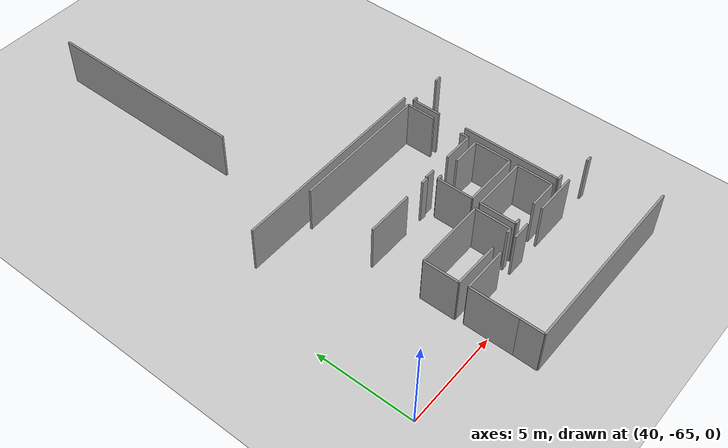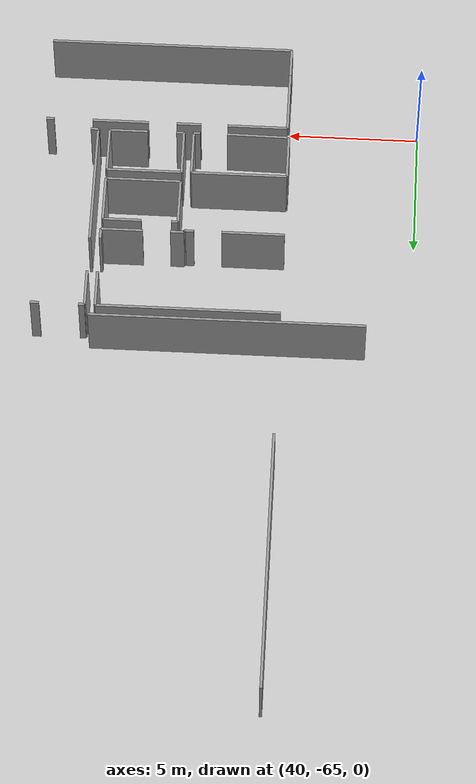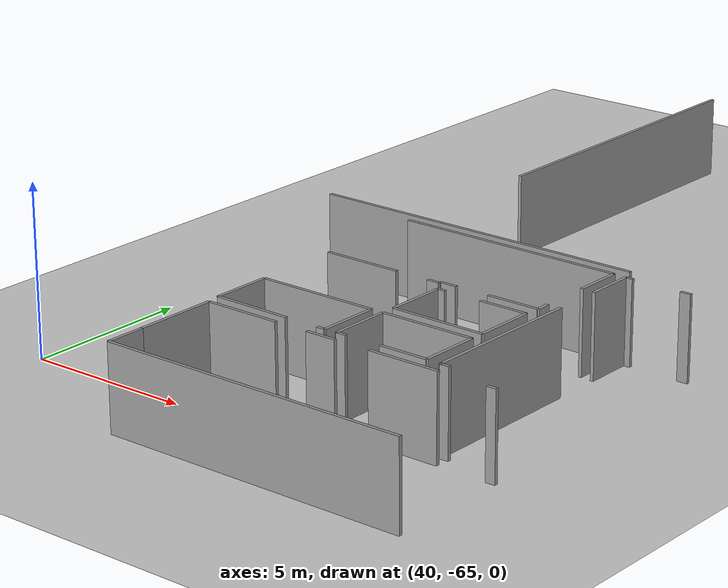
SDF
<sdf version="1.6">
 <world name="default">
  <model name="ground_plane">
   <static>1</static>
   <link name="link">
    <collision name="collision">
     <geometry><plane><normal>0 0 1</normal><size>100 100</size></plane></geometry>
     <surface><friction><ode><mu>100</mu><mu2>50</mu2></ode></friction></surface>
    </collision>
    <visual name="visual">
     <cast_shadows>0</cast_shadows>
     <geometry><plane><normal>0 0 1</normal><size>100 100</size></plane></geometry>
     <material>
      <script><uri>file://media/materials/scripts/gazebo.material</uri><name>Gazebo/Grey</name></script>
     </material>
    </visual>
   </link>
  </model>
  <model name="50036893">
   <static>1</static>
   <link name="Wall_203">
    <collision name="Wall_203_Collision">
     <geometry><box><size>10.4972831084 0.1 2.5</size></box></geometry>
     <pose>5.24864155418 0 1.25 0 0 0</pose>
    </collision>
    <visual name="Wall_203_Visual">
     <pose>5.24864155418 0 1.25 0 0 0</pose>
     <geometry><box><size>10.4972831084 0.1 2.5</size></box></geometry>
     <material>
      <script><uri>file://media/materials/scripts/gazebo.material</uri><name>Gazebo/Grey</name></script>
      <ambient>1 1 1 1</ambient>
     </material>
    </visual>
    <pose>126.472859616 -122.969876424 0 0 0 3.14159265359</pose>
   </link>
   <link name="Wall_210">
    <collision name="Wall_210_Collision">
     <geometry><box><size>7.00495190753 0.1 2.5</size></box></geometry>
     <pose>3.50247595377 0 1.25 0 0 0</pose>
    </collision>
    <visual name="Wall_210_Visual">
     <pose>3.50247595377 0 1.25 0 0 0</pose>
     <geometry><box><size>7.00495190753 0.1 2.5</size></box></geometry>
     <material>
      <script><uri>file://media/materials/scripts/gazebo.material</uri><name>Gazebo/Grey</name></script>
      <ambient>1 1 1 1</ambient>
     </material>
    </visual>
    <pose>119.214288885 -123.37617378 0 0 0 0.0</pose>
   </link>
   <link name="Wall_211">
    <collision name="Wall_211_Collision">
     <geometry><box><size>1.45830823564 0.1 2.5</size></box></geometry>
     <pose>0.729154117819 0 1.25 0 0 0</pose>
    </collision>
    <visual name="Wall_211_Visual">
     <pose>0.729154117819 0 1.25 0 0 0</pose>
     <geometry><box><size>1.45830823564 0.1 2.5</size></box></geometry>
     <material>
      <script><uri>file://media/materials/scripts/gazebo.material</uri><name>Gazebo/Grey</name></script>
      <ambient>1 1 1 1</ambient>
     </material>
    </visual>
    <pose>126.219240792 -123.37617378 0 0 0 -1.57079632679</pose>
   </link>
   <link name="Wall_212">
    <collision name="Wall_212_Collision">
     <geometry><box><size>0.429123049513 0.1 2.5</size></box></geometry>
     <pose>0.214561524756 0 1.25 0 0 0</pose>
    </collision>
    <visual name="Wall_212_Visual">
     <pose>0.214561524756 0 1.25 0 0 0</pose>
     <geometry><box><size>0.429123049513 0.1 2.5</size></box></geometry>
     <material>
      <script><uri>file://media/materials/scripts/gazebo.material</uri><name>Gazebo/Grey</name></script>
      <ambient>1 1 1 1</ambient>
     </material>
    </visual>
    <pose>126.219240792 -126.32753603 0 0 0 -1.57079632679</pose>
   </link>
   <link name="Wall_213">
    <collision name="Wall_213_Collision">
     <geometry><box><size>1.59526240038 0.1 2.5</size></box></geometry>
     <pose>0.797631200188 0 1.25 0 0 0</pose>
    </collision>
    <visual name="Wall_213_Visual">
     <pose>0.797631200188 0 1.25 0 0 0</pose>
     <geometry><box><size>1.59526240038 0.1 2.5</size></box></geometry>
     <material>
      <script><uri>file://media/materials/scripts/gazebo.material</uri><name>Gazebo/Grey</name></script>
      <ambient>1 1 1 1</ambient>
     </material>
    </visual>
    <pose>126.219240792 -126.756659079 0 0 0 3.14159265359</pose>
   </link>
   <link name="Wall_214">
    <collision name="Wall_214_Collision">
     <geometry><box><size>0.527527153065 0.1 2.5</size></box></geometry>
     <pose>0.263763576533 0 1.25 0 0 0</pose>
    </collision>
    <visual name="Wall_214_Visual">
     <pose>0.263763576533 0 1.25 0 0 0</pose>
     <geometry><box><size>0.527527153065 0.1 2.5</size></box></geometry>
     <material>
      <script><uri>file://media/materials/scripts/gazebo.material</uri><name>Gazebo/Grey</name></script>
      <ambient>1 1 1 1</ambient>
     </material>
    </visual>
    <pose>123.571460274 -126.756659079 0 0 0 3.14159265359</pose>
   </link>
   <link name="Wall_215">
    <collision name="Wall_215_Collision">
     <geometry><box><size>0.0664481317803 0.1 2.5</size></box></geometry>
     <pose>0.0332240658902 0 1.25 0 0 0</pose>
    </collision>
    <visual name="Wall_215_Visual">
     <pose>0.0332240658902 0 1.25 0 0 0</pose>
     <geometry><box><size>0.0664481317803 0.1 2.5</size></box></geometry>
     <material>
      <script><uri>file://media/materials/scripts/gazebo.material</uri><name>Gazebo/Grey</name></script>
      <ambient>1 1 1 1</ambient>
     </material>
    </visual>
    <pose>123.043933121 -126.756659079 0 0 0 -1.57079632679</pose>
   </link>
   <link name="Wall_216">
    <collision name="Wall_216_Collision">
     <geometry><box><size>0.37028348244 0.1 2.5</size></box></geometry>
     <pose>0.18514174122 0 1.25 0 0 0</pose>
    </collision>
    <visual name="Wall_216_Visual">
     <pose>0.18514174122 0 1.25 0 0 0</pose>
     <geometry><box><size>0.37028348244 0.1 2.5</size></box></geometry>
     <material>
      <script><uri>file://media/materials/scripts/gazebo.material</uri><name>Gazebo/Grey</name></script>
      <ambient>1 1 1 1</ambient>
     </material>
    </visual>
    <pose>123.043933121 -126.823107211 0 0 0 3.14159265359</pose>
   </link>
   <link name="Wall_217">
    <collision name="Wall_217_Collision">
     <geometry><box><size>2.39670131817 0.1 2.5</size></box></geometry>
     <pose>1.19835065909 0 1.25 0 0 0</pose>
    </collision>
    <visual name="Wall_217_Visual">
     <pose>1.19835065909 0 1.25 0 0 0</pose>
     <geometry><box><size>2.39670131817 0.1 2.5</size></box></geometry>
     <material>
      <script><uri>file://media/materials/scripts/gazebo.material</uri><name>Gazebo/Grey</name></script>
      <ambient>1 1 1 1</ambient>
     </material>
    </visual>
    <pose>121.610986767 -126.823107211 0 0 0 3.13989953351</pose>
   </link>
   <link name="Wall_218">
    <collision name="Wall_218_Collision">
     <geometry><box><size>1.77406367101 0.1 2.5</size></box></geometry>
     <pose>0.887031835503 0 1.25 0 0 0</pose>
    </collision>
    <visual name="Wall_218_Visual">
     <pose>0.887031835503 0 1.25 0 0 0</pose>
     <geometry><box><size>1.77406367101 0.1 2.5</size></box></geometry>
     <material>
      <script><uri>file://media/materials/scripts/gazebo.material</uri><name>Gazebo/Grey</name></script>
      <ambient>1 1 1 1</ambient>
     </material>
    </visual>
    <pose>119.247259332 -131.227451701 0 0 0 1.57079632679</pose>
   </link>
   <link name="Wall_219">
    <collision name="Wall_219_Collision">
     <geometry><box><size>3.67240056557 0.1 2.5</size></box></geometry>
     <pose>1.83620028279 0 1.25 0 0 0</pose>
    </collision>
    <visual name="Wall_219_Visual">
     <pose>1.83620028279 0 1.25 0 0 0</pose>
     <geometry><box><size>3.67240056557 0.1 2.5</size></box></geometry>
     <material>
      <script><uri>file://media/materials/scripts/gazebo.material</uri><name>Gazebo/Grey</name></script>
      <ambient>1 1 1 1</ambient>
     </material>
    </visual>
    <pose>119.247259332 -129.45338803 0 0 0 0.0</pose>
   </link>
   <link name="Wall_220">
    <collision name="Wall_220_Collision">
     <geometry><box><size>1.8072877369 0.1 2.5</size></box></geometry>
     <pose>0.903643868448 0 1.25 0 0 0</pose>
    </collision>
    <visual name="Wall_220_Visual">
     <pose>0.903643868448 0 1.25 0 0 0</pose>
     <geometry><box><size>1.8072877369 0.1 2.5</size></box></geometry>
     <material>
      <script><uri>file://media/materials/scripts/gazebo.material</uri><name>Gazebo/Grey</name></script>
      <ambient>1 1 1 1</ambient>
     </material>
    </visual>
    <pose>122.919659897 -129.45338803 0 0 0 -1.57079632679</pose>
   </link>
   <link name="Wall_221">
    <collision name="Wall_221_Collision">
     <geometry><box><size>0.256155011825 0.1 2.5</size></box></geometry>
     <pose>0.128077505912 0 1.25 0 0 0</pose>
    </collision>
    <visual name="Wall_221_Visual">
     <pose>0.128077505912 0 1.25 0 0 0</pose>
     <geometry><box><size>0.256155011825 0.1 2.5</size></box></geometry>
     <material>
      <script><uri>file://media/materials/scripts/gazebo.material</uri><name>Gazebo/Grey</name></script>
      <ambient>1 1 1 1</ambient>
     </material>
    </visual>
    <pose>122.919659897 -131.260675767 0 0 0 3.14159265359</pose>
   </link>
   <link name="Wall_222">
    <collision name="Wall_222_Collision">
     <geometry><box><size>2.37156873527 0.1 2.5</size></box></geometry>
     <pose>1.18578436763 0 1.25 0 0 0</pose>
    </collision>
    <visual name="Wall_222_Visual">
     <pose>1.18578436763 0 1.25 0 0 0</pose>
     <geometry><box><size>2.37156873527 0.1 2.5</size></box></geometry>
     <material>
      <script><uri>file://media/materials/scripts/gazebo.material</uri><name>Gazebo/Grey</name></script>
      <ambient>1 1 1 1</ambient>
     </material>
    </visual>
    <pose>121.618595332 -131.260675767 0 0 0 3.12758287506</pose>
   </link>
   <link name="Wall_223">
    <collision name="Wall_223_Collision">
     <geometry><box><size>1.82098315337 0.1 2.5</size></box></geometry>
     <pose>0.910491576685 0 1.25 0 0 0</pose>
    </collision>
    <visual name="Wall_223_Visual">
     <pose>0.910491576685 0 1.25 0 0 0</pose>
     <geometry><box><size>1.82098315337 0.1 2.5</size></box></geometry>
     <material>
      <script><uri>file://media/materials/scripts/gazebo.material</uri><name>Gazebo/Grey</name></script>
      <ambient>1 1 1 1</ambient>
     </material>
    </visual>
    <pose>123.307696697 -129.025786694 0 0 0 1.57079632679</pose>
   </link>
   <link name="Wall_224">
    <collision name="Wall_224_Collision">
     <geometry><box><size>0.248546447117 0.1 2.5</size></box></geometry>
     <pose>0.124273223559 0 1.25 0 0 0</pose>
    </collision>
    <visual name="Wall_224_Visual">
     <pose>0.124273223559 0 1.25 0 0 0</pose>
     <geometry><box><size>0.248546447117 0.1 2.5</size></box></geometry>
     <material>
      <script><uri>file://media/materials/scripts/gazebo.material</uri><name>Gazebo/Grey</name></script>
      <ambient>1 1 1 1</ambient>
     </material>
    </visual>
    <pose>123.307696697 -127.204803541 0 0 0 0.0</pose>
   </link>
   <link name="Wall_225">
    <collision name="Wall_225_Collision">
     <geometry><box><size>1.47606155329 0.1 2.5</size></box></geometry>
     <pose>0.738030776644 0 1.25 0 0 0</pose>
    </collision>
    <visual name="Wall_225_Visual">
     <pose>0.738030776644 0 1.25 0 0 0</pose>
     <geometry><box><size>1.47606155329 0.1 2.5</size></box></geometry>
     <material>
      <script><uri>file://media/materials/scripts/gazebo.material</uri><name>Gazebo/Grey</name></script>
      <ambient>1 1 1 1</ambient>
     </material>
    </visual>
    <pose>124.702600227 -127.204803541 0 0 0 0.0</pose>
   </link>
   <link name="Wall_226">
    <collision name="Wall_226_Collision">
     <geometry><box><size>1.83138152514 0.1 2.5</size></box></geometry>
     <pose>0.915690762568 0 1.25 0 0 0</pose>
    </collision>
    <visual name="Wall_226_Visual">
     <pose>0.915690762568 0 1.25 0 0 0</pose>
     <geometry><box><size>1.83138152514 0.1 2.5</size></box></geometry>
     <material>
      <script><uri>file://media/materials/scripts/gazebo.material</uri><name>Gazebo/Grey</name></script>
      <ambient>1 1 1 1</ambient>
     </material>
    </visual>
    <pose>126.17866178 -127.204803541 0 0 0 -1.57079632679</pose>
   </link>
   <link name="Wall_227">
    <collision name="Wall_227_Collision">
     <geometry><box><size>2.87098391394 0.1 2.5</size></box></geometry>
     <pose>1.43549195697 0 1.25 0 0 0</pose>
    </collision>
    <visual name="Wall_227_Visual">
     <pose>1.43549195697 0 1.25 0 0 0</pose>
     <geometry><box><size>2.87098391394 0.1 2.5</size></box></geometry>
     <material>
      <script><uri>file://media/materials/scripts/gazebo.material</uri><name>Gazebo/Grey</name></script>
      <ambient>1 1 1 1</ambient>
     </material>
    </visual>
    <pose>126.17866178 -129.036185066 0 0 0 3.1379707613</pose>
   </link>
   <link name="Wall_228">
    <collision name="Wall_228_Collision">
     <geometry><box><size>2.45604468764 0.1 2.5</size></box></geometry>
     <pose>1.22802234382 0 1.25 0 0 0</pose>
    </collision>
    <visual name="Wall_228_Visual">
     <pose>1.22802234382 0 1.25 0 0 0</pose>
     <geometry><box><size>2.45604468764 0.1 2.5</size></box></geometry>
     <material>
      <script><uri>file://media/materials/scripts/gazebo.material</uri><name>Gazebo/Grey</name></script>
      <ambient>1 1 1 1</ambient>
     </material>
    </visual>
    <pose>119.313200226 -134.110590488 0 0 0 1.57079632679</pose>
   </link>
   <link name="Wall_229">
    <collision name="Wall_229_Collision">
     <geometry><box><size>2.31300367113 0.1 2.5</size></box></geometry>
     <pose>1.15650183557 0 1.25 0 0 0</pose>
    </collision>
    <visual name="Wall_229_Visual">
     <pose>1.15650183557 0 1.25 0 0 0</pose>
     <geometry><box><size>2.31300367113 0.1 2.5</size></box></geometry>
     <material>
      <script><uri>file://media/materials/scripts/gazebo.material</uri><name>Gazebo/Grey</name></script>
      <ambient>1 1 1 1</ambient>
     </material>
    </visual>
    <pose>119.313200226 -131.6545458 0 0 0 0.0</pose>
   </link>
   <link name="Wall_230">
    <collision name="Wall_230_Collision">
     <geometry><box><size>0.935853459044 0.1 2.5</size></box></geometry>
     <pose>0.467926729522 0 1.25 0 0 0</pose>
    </collision>
    <visual name="Wall_230_Visual">
     <pose>0.467926729522 0 1.25 0 0 0</pose>
     <geometry><box><size>0.935853459044 0.1 2.5</size></box></geometry>
     <material>
      <script><uri>file://media/materials/scripts/gazebo.material</uri><name>Gazebo/Grey</name></script>
      <ambient>1 1 1 1</ambient>
     </material>
    </visual>
    <pose>122.655896321 -131.6545458 0 0 0 0.0</pose>
   </link>
   <link name="Wall_231">
    <collision name="Wall_231_Collision">
     <geometry><box><size>2.17097712992 0.1 2.5</size></box></geometry>
     <pose>1.08548856496 0 1.25 0 0 0</pose>
    </collision>
    <visual name="Wall_231_Visual">
     <pose>1.08548856496 0 1.25 0 0 0</pose>
     <geometry><box><size>2.17097712992 0.1 2.5</size></box></geometry>
     <material>
      <script><uri>file://media/materials/scripts/gazebo.material</uri><name>Gazebo/Grey</name></script>
      <ambient>1 1 1 1</ambient>
     </material>
    </visual>
    <pose>124.687383098 -131.6545458 0 0 0 0.0</pose>
   </link>
   <link name="Wall_232">
    <collision name="Wall_232_Collision">
     <geometry><box><size>0.296734023599 0.1 2.5</size></box></geometry>
     <pose>0.1483670118 0 1.25 0 0 0</pose>
    </collision>
    <visual name="Wall_232_Visual">
     <pose>0.1483670118 0 1.25 0 0 0</pose>
     <geometry><box><size>0.296734023599 0.1 2.5</size></box></geometry>
     <material>
      <script><uri>file://media/materials/scripts/gazebo.material</uri><name>Gazebo/Grey</name></script>
      <ambient>1 1 1 1</ambient>
     </material>
    </visual>
    <pose>128.347102722 -131.6545458 0 0 0 0.0</pose>
   </link>
   <link name="Wall_234">
    <collision name="Wall_234_Collision">
     <geometry><box><size>9.34078127279 0.1 2.5</size></box></geometry>
     <pose>4.67039063639 0 1.25 0 0 0</pose>
    </collision>
    <visual name="Wall_234_Visual">
     <pose>4.67039063639 0 1.25 0 0 0</pose>
     <geometry><box><size>9.34078127279 0.1 2.5</size></box></geometry>
     <material>
      <script><uri>file://media/materials/scripts/gazebo.material</uri><name>Gazebo/Grey</name></script>
      <ambient>1 1 1 1</ambient>
     </material>
    </visual>
    <pose>128.643836746 -135.272925557 0 0 0 3.14159265359</pose>
   </link>
   <link name="Wall_235">
    <collision name="Wall_235_Collision">
     <geometry><box><size>1.1623793389 0.1 2.5</size></box></geometry>
     <pose>0.581189669449 0 1.25 0 0 0</pose>
    </collision>
    <visual name="Wall_235_Visual">
     <pose>0.581189669449 0 1.25 0 0 0</pose>
     <geometry><box><size>1.1623793389 0.1 2.5</size></box></geometry>
     <material>
      <script><uri>file://media/materials/scripts/gazebo.material</uri><name>Gazebo/Grey</name></script>
      <ambient>1 1 1 1</ambient>
     </material>
    </visual>
    <pose>119.303055473 -135.272925557 0 0 0 1.56206864092</pose>
   </link>
   <link name="Wall_236">
    <collision name="Wall_236_Collision">
     <geometry><box><size>1.8019617416 0.1 2.5</size></box></geometry>
     <pose>0.9009808708 0 1.25 0 0 0</pose>
    </collision>
    <visual name="Wall_236_Visual">
     <pose>0.9009808708 0 1.25 0 0 0</pose>
     <geometry><box><size>1.8019617416 0.1 2.5</size></box></geometry>
     <material>
      <script><uri>file://media/materials/scripts/gazebo.material</uri><name>Gazebo/Grey</name></script>
      <ambient>1 1 1 1</ambient>
     </material>
    </visual>
    <pose>123.297551944 -131.247487589 0 0 0 1.57079632679</pose>
   </link>
   <link name="Wall_237">
    <collision name="Wall_237_Collision">
     <geometry><box><size>2.87096508303 0.1 2.5</size></box></geometry>
     <pose>1.43548254151 0 1.25 0 0 0</pose>
    </collision>
    <visual name="Wall_237_Visual">
     <pose>1.43548254151 0 1.25 0 0 0</pose>
     <geometry><box><size>2.87096508303 0.1 2.5</size></box></geometry>
     <material>
      <script><uri>file://media/materials/scripts/gazebo.material</uri><name>Gazebo/Grey</name></script>
      <ambient>1 1 1 1</ambient>
     </material>
    </visual>
    <pose>123.297551944 -129.445525847 0 0 0 0.0</pose>
   </link>
   <link name="Wall_238">
    <collision name="Wall_238_Collision">
     <geometry><box><size>1.7923242263 0.1 2.5</size></box></geometry>
     <pose>0.896162113152 0 1.25 0 0 0</pose>
    </collision>
    <visual name="Wall_238_Visual">
     <pose>0.896162113152 0 1.25 0 0 0</pose>
     <geometry><box><size>1.7923242263 0.1 2.5</size></box></geometry>
     <material>
      <script><uri>file://media/materials/scripts/gazebo.material</uri><name>Gazebo/Grey</name></script>
      <ambient>1 1 1 1</ambient>
     </material>
    </visual>
    <pose>126.168517027 -129.445525847 0 0 0 -1.57079632679</pose>
   </link>
   <link name="Wall_239">
    <collision name="Wall_239_Collision">
     <geometry><box><size>1.46845298858 0.1 2.5</size></box></geometry>
     <pose>0.73422649429 0 1.25 0 0 0</pose>
    </collision>
    <visual name="Wall_239_Visual">
     <pose>0.73422649429 0 1.25 0 0 0</pose>
     <geometry><box><size>1.46845298858 0.1 2.5</size></box></geometry>
     <material>
      <script><uri>file://media/materials/scripts/gazebo.material</uri><name>Gazebo/Grey</name></script>
      <ambient>1 1 1 1</ambient>
     </material>
    </visual>
    <pose>126.168517027 -131.237850073 0 0 0 3.14159265359</pose>
   </link>
   <link name="Wall_240">
    <collision name="Wall_240_Collision">
     <geometry><box><size>0.289286039553 0.1 2.5</size></box></geometry>
     <pose>0.144643019777 0 1.25 0 0 0</pose>
    </collision>
    <visual name="Wall_240_Visual">
     <pose>0.144643019777 0 1.25 0 0 0</pose>
     <geometry><box><size>0.289286039553 0.1 2.5</size></box></geometry>
     <material>
      <script><uri>file://media/materials/scripts/gazebo.material</uri><name>Gazebo/Grey</name></script>
      <ambient>1 1 1 1</ambient>
     </material>
    </visual>
    <pose>123.586677403 -131.237850073 0 0 0 -3.10827165771</pose>
   </link>
   <link name="Wall_241">
    <collision name="Wall_241_Collision">
     <geometry><box><size>4.87987978468 0.1 2.5</size></box></geometry>
     <pose>2.43993989234 0 1.25 0 0 0</pose>
    </collision>
    <visual name="Wall_241_Visual">
     <pose>2.43993989234 0 1.25 0 0 0</pose>
     <geometry><box><size>4.87987978468 0.1 2.5</size></box></geometry>
     <material>
      <script><uri>file://media/materials/scripts/gazebo.material</uri><name>Gazebo/Grey</name></script>
      <ambient>1 1 1 1</ambient>
     </material>
    </visual>
    <pose>126.617422345 -131.190169734 0 0 0 1.57079632679</pose>
   </link>
   <link name="Wall_242">
    <collision name="Wall_242_Collision">
     <geometry><box><size>1.46921384505 0.1 2.5</size></box></geometry>
     <pose>0.734606922526 0 1.25 0 0 0</pose>
    </collision>
    <visual name="Wall_242_Visual">
     <pose>0.734606922526 0 1.25 0 0 0</pose>
     <geometry><box><size>1.46921384505 0.1 2.5</size></box></geometry>
     <material>
      <script><uri>file://media/materials/scripts/gazebo.material</uri><name>Gazebo/Grey</name></script>
      <ambient>1 1 1 1</ambient>
     </material>
    </visual>
    <pose>126.617422345 -124.856546853 0 0 0 1.57079632679</pose>
   </link>
   <link name="Wall_243">
    <collision name="Wall_243_Collision">
     <geometry><box><size>0.22825694123 0.1 2.5</size></box></geometry>
     <pose>0.114128470615 0 1.25 0 0 0</pose>
    </collision>
    <visual name="Wall_243_Visual">
     <pose>0.114128470615 0 1.25 0 0 0</pose>
     <geometry><box><size>0.22825694123 0.1 2.5</size></box></geometry>
     <material>
      <script><uri>file://media/materials/scripts/gazebo.material</uri><name>Gazebo/Grey</name></script>
      <ambient>1 1 1 1</ambient>
     </material>
    </visual>
    <pose>126.617422345 -123.387333008 0 0 0 0.0</pose>
   </link>
   <link name="Wall_244">
    <collision name="Wall_244_Collision">
     <geometry><box><size>0.332240658902 0.1 2.5</size></box></geometry>
     <pose>0.166120329451 0 1.25 0 0 0</pose>
    </collision>
    <visual name="Wall_244_Visual">
     <pose>0.166120329451 0 1.25 0 0 0</pose>
     <geometry><box><size>0.332240658902 0.1 2.5</size></box></geometry>
     <material>
      <script><uri>file://media/materials/scripts/gazebo.material</uri><name>Gazebo/Grey</name></script>
      <ambient>1 1 1 1</ambient>
     </material>
    </visual>
    <pose>128.342030345 -123.387333008 0 0 0 0.0</pose>
   </link>
   <link name="Wall_248">
    <collision name="Wall_248_Collision">
     <geometry><box><size>0.294197835363 0.1 2.5</size></box></geometry>
     <pose>0.147098917682 0 1.25 0 0 0</pose>
    </collision>
    <visual name="Wall_248_Visual">
     <pose>0.147098917682 0 1.25 0 0 0</pose>
     <geometry><box><size>0.294197835363 0.1 2.5</size></box></geometry>
     <material>
      <script><uri>file://media/materials/scripts/gazebo.material</uri><name>Gazebo/Grey</name></script>
      <ambient>1 1 1 1</ambient>
     </material>
    </visual>
    <pose>126.901475428 -131.256871485 0 0 0 3.14159265359</pose>
   </link>
   <link name="Wall_249">
    <collision name="Wall_249_Collision">
     <geometry><box><size>0.0674688042425 0.1 2.5</size></box></geometry>
     <pose>0.0337344021213 0 1.25 0 0 0</pose>
    </collision>
    <visual name="Wall_249_Visual">
     <pose>0.0337344021213 0 1.25 0 0 0</pose>
     <geometry><box><size>0.0674688042425 0.1 2.5</size></box></geometry>
     <material>
      <script><uri>file://media/materials/scripts/gazebo.material</uri><name>Gazebo/Grey</name></script>
      <ambient>1 1 1 1</ambient>
     </material>
    </visual>
    <pose>126.607277592 -131.256871485 0 0 0 1.41986177237</pose>
   </link>
   <link name="Wall_297">
    <collision name="Wall_297_Collision">
     <geometry><box><size>10.3699664589 0.1 2.5</size></box></geometry>
     <pose>5.18498322946 0 1.25 0 0 0</pose>
    </collision>
    <visual name="Wall_297_Visual">
     <pose>5.18498322946 0 1.25 0 0 0</pose>
     <geometry><box><size>10.3699664589 0.1 2.5</size></box></geometry>
     <material>
      <script><uri>file://media/materials/scripts/gazebo.material</uri><name>Gazebo/Grey</name></script>
      <ambient>1 1 1 1</ambient>
     </material>
    </visual>
    <pose>119.237114579 -118.20209616 0 0 0 1.57079632679</pose>
   </link>
   <pose>-74.25 67.8925905261 0 0 0 0</pose>
  </model>
 </world>
</sdf>
